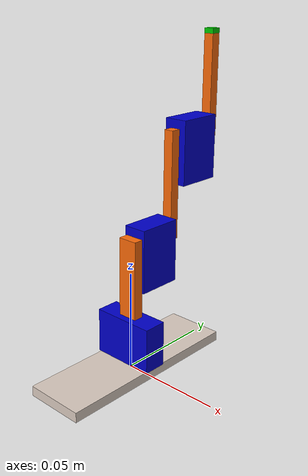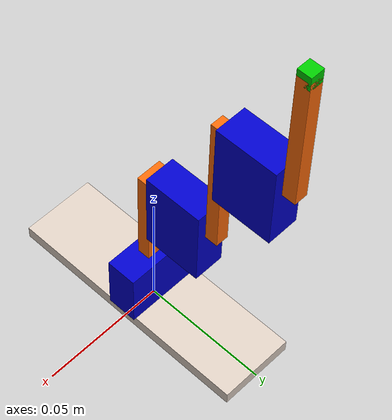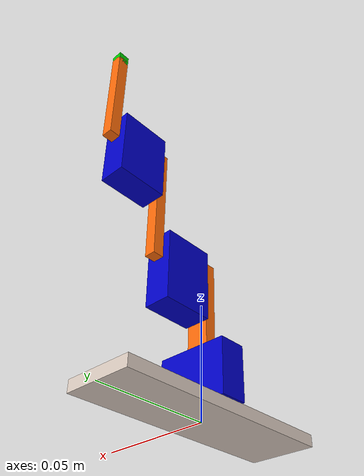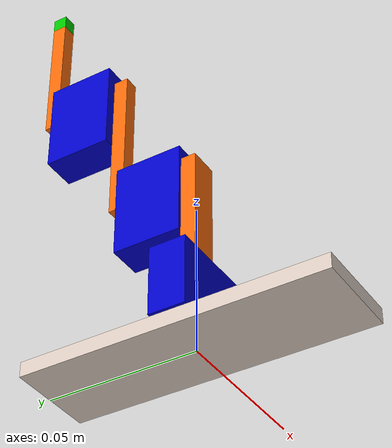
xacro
<?xml version="1.0" encoding="UTF-8"?>
<robot xmlns:xacro="http://www.ros.org/wiki/xacro" name="arduarm">

    <!-- Includes -->
    <xacro:include filename='$(find arduarm_description)/urdf/macros.xacro' />
    <xacro:include filename="$(find arduarm_description)/urdf/arduarm_properties.xacro" />
    <xacro:include filename="$(find arduarm_description)/urdf/materials.xacro" />
    <xacro:include filename="$(find arduarm_description)/urdf/gazebo_properties.xacro" />
    <xacro:include filename="$(find arduarm_description)/urdf/gazebo_plugins.xacro" />

    <link name='world' />
    <joint name="fixed" type="fixed">
        <parent link="world" />
        <child link="base_link" />
    </joint>

    <!-- Base Link -->
    <link name="base_link">
        <collision>
            <origin xyz="0 0 ${base_height/2}" rpy="0 0 0" />
            <geometry>
                <box size="${base_length} ${base_width} ${base_height}" />
            </geometry>
        </collision>

        <visual>
            <origin xyz="0 0 ${base_height/2}" rpy="0 0 0" />
            <geometry>
                <box size="${base_length} ${base_width} ${base_height}" />
            </geometry>
            <material name="brown" />
        </visual>

        <inertial>
            <origin xyz="0 0 ${base_height/2}" rpy="0 0 0" />
            <mass value="${mass}" />
            <xacro:box_inertia mass="${mass}" width="${base_width}" height="${height1}" />
        </inertial>
    </link>

    <!-- base_servo1_joint -->
    <joint name="base_servo1_joint" type="fixed">
        <origin xyz="0 0 ${base_height}" rpy="0 0 0" />
        <parent link="base_link" />
        <child link="servo1" />
        <axis xyz="0 0 1" />
    </joint>

    <!-- servo1 -->
    <link name="servo1">
        <collision>
            <origin xyz="0 0 ${servo_height/2}" rpy="0 0 0" />
            <geometry>
                <box size="${servo_length} ${servo_width} ${servo_height}" />
            </geometry>
        </collision>

        <visual>
            <origin xyz="0 0 ${servo_height/2}" rpy="0 0 0" />
            <geometry>
                <box size="${servo_length} ${servo_width} ${servo_height}" />
            </geometry>
            <material name="blue" />
        </visual>

        <inertial>
            <origin xyz="0 0 ${servo_height/2}" rpy="0 0 0" />
            <mass value="${mass}" />
            <xacro:box_inertia mass="${mass}" width="${servo_width}" height="${height1}" />
        </inertial>

    </link>

    <!-- servo1_link1_joint -->
    <joint name="servo1_link1_joint" type="revolute">
        <origin xyz="0 0 ${servo_height}" rpy="0 0 0" />
        <parent link="servo1" />
        <child link="link1" />
        <axis xyz="0 0 1" />

        <limit effort="1000" velocity="0.5" lower="-${PI/2}" upper="${PI/2}" />
    </joint>

    <!-- Link 1 -->
    <link name="link1">
        <collision>
            <origin xyz="0 0 ${height1/2}" rpy="0 0 0" />
            <geometry>
                <box size="${length1} ${width1} ${height1}" />
            </geometry>
        </collision>

        <visual>
            <origin xyz="0 0 ${height1/2}" rpy="0 0 0" />
            <geometry>
                <box size="${length1} ${width1} ${height1}" />
            </geometry>
            <material name="orange" />
        </visual>

        <inertial>
            <origin xyz="0 0 ${height1/2}" rpy="0 0 0" />
            <mass value="${mass}" />
            <xacro:box_inertia mass="${mass}" width="${width1}" height="${height1}" />
        </inertial>

    </link>

    <!-- link1_servo2_joint -->
    <joint name="link1_servo2_joint" type="fixed">
        <origin xyz="0 ${width1/2} ${height1 - servo_height/2}" rpy="0 ${PI/2} ${PI/2}" />
        <parent link="link1" />
        <child link="servo2" />
        <axis xyz="1 0 0" />
    </joint>

    <!-- servo2 -->
    <link name="servo2">
        <collision>
            <origin xyz="0 0 ${servo_height/2}" rpy="0 0 0" />
            <geometry>
                <box size="${servo_length} ${servo_width} ${servo_height}" />
            </geometry>
        </collision>

        <visual>
            <origin xyz="0 0 ${servo_height/2}" rpy="0 0 0" />
            <geometry>
                <box size="${servo_length} ${servo_width} ${servo_height}" />
            </geometry>
            <material name="blue" />
        </visual>

        <inertial>
            <origin xyz="0 0 ${servo_height/2}" rpy="0 0 0" />
            <mass value="${mass}" />
            <xacro:box_inertia mass="${mass}" width="${servo_width}" height="${height1}" />
        </inertial>

    </link>

    <!-- servo2_link2_joint -->
    <joint name="servo2_link2_joint" type="revolute">
        <origin xyz="${servo_width/2-axel_offset} 0 ${servo_height+length2/2}" rpy="${PI/2} 0 -${PI/2}" />
        <parent link="servo2" />
        <child link="link2" />
        <axis xyz="0 1 0" />
        <limit effort="1000" velocity="0.5" lower="-${PI/2}" upper="${PI/2}" />
    </joint>

    <!-- Link 2 -->
    <link name="link2">
        <collision>
            <origin xyz="0 0 ${height2/2}" rpy="0 0 0" />
            <geometry>
                <box size="${length2} ${width2} ${height2}" />
            </geometry>
        </collision>

        <visual>
            <origin xyz="0 0 ${height2/2}" rpy="0 0 0" />
            <geometry>
                <box size="${length2} ${width2} ${height2}" />
            </geometry>
            <material name="orange" />
        </visual>

        <inertial>
            <origin xyz="0 0 ${height2/2}" rpy="0 0 0" />
            <mass value="${mass}" />
            <xacro:box_inertia mass="${mass}" width="${width2}" height="${height2}" />
        </inertial>
    </link>

    <!-- link2_servo3_joint -->
    <joint name="link2_servo3_joint" type="fixed">
        <origin xyz="0 ${width2/2} ${height2 - servo_height/2}" rpy="0 ${PI/2} ${PI/2}" />
        <parent link="link2" />
        <child link="servo3" />
        <axis xyz="1 0 0" />
    </joint>

    <!-- servo3 -->
    <link name="servo3">
        <collision>
            <origin xyz="0 0 ${servo_height/2}" rpy="0 0 0" />
            <geometry>
                <box size="${servo_length} ${servo_width} ${servo_height}" />
            </geometry>
        </collision>

        <visual>
            <origin xyz="0 0 ${servo_height/2}" rpy="0 0 0" />
            <geometry>
                <box size="${servo_length} ${servo_width} ${servo_height}" />
            </geometry>
            <material name="blue" />
        </visual>

        <inertial>
            <origin xyz="0 0 ${servo_height/2}" rpy="0 0 0" />
            <mass value="${mass}" />
            <xacro:box_inertia mass="${mass}" width="${servo_width}" height="${height1}" />
        </inertial>

    </link>

    <!-- servo3_link3_joint -->
    <joint name="servo3_link3_joint" type="revolute">
        <origin xyz="${servo_width/2 - axel_offset} 0 ${servo_height + length2/2}" rpy="${PI/2} 0 -${PI/2}" />
        <parent link="servo3" />
        <child link="link3" />
        <axis xyz="0 1 0" />

        <limit effort="1000" velocity="0.5" lower="-${PI/2}" upper="${PI/2}" />
    </joint>

    <!-- Link 3 -->
    <link name="link3">
        <collision>
            <origin xyz="0 0 ${height3/2}" rpy="0 0 0" />
            <geometry>
                <box size="${length3} ${width3} ${height3}" />
            </geometry>
        </collision>

        <visual>
            <origin xyz="0 0 ${height3/2}" rpy="0 0 0" />
            <geometry>
                <box size="${length3} ${width3} ${height3}" />
            </geometry>
            <material name="orange" />
        </visual>

        <inertial>
            <origin xyz="0 0 ${height3/2}" rpy="0 0 0" />
            <mass value="${mass}" />
            <xacro:box_inertia mass="${mass}" width="${width3}" height="${height3}" />
        </inertial>
    </link>

    <!-- link3_end_effector_joint -->
    <joint name="link3_end_effector_joint" type="fixed">
        <origin xyz="0 0 ${height3}" rpy="0 0 0" />
        <parent link="link3" />
        <child link="end_effector" />
        <axis xyz="0 1 0" />
    </joint>

    <!-- Link 3 -->
    <link name="end_effector">
        <collision>
            <origin xyz="0 0 0" rpy="0 0 0" />
            <geometry>
                <box size="${width1} ${width1} ${width1}" />
            </geometry>
        </collision>

        <visual>
            <origin xyz="0 0 0" rpy="0 0 0" />
            <geometry>
                <box size="${width1} ${width1} ${width1}" />
            </geometry>
            <material name="green" />
        </visual>

        <inertial>
            <origin xyz="0 0 ${height3/2}" rpy="0 0 0" />
            <mass value="${mass}" />
            <xacro:box_inertia mass="${mass}" width="${width3}" height="${height3}" />
        </inertial>
    </link>

</robot>

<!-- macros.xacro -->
<robot xmlns:xacro="http://www.ros.org/wiki/xacro" name="arduarm">

<!-- Macros -->
    <xacro:macro name="box_inertia" params="mass width height">
        <inertia
        ixx="${mass / 12.0 * (width*width + height*height)}"
        ixy="0.0"
        ixz="0.0"
        iyy="${mass / 12.0 * (height*height + width*width)}"
        iyz="0.0"
        izz="${mass / 12.0 * (width*width + width*width)}" />
    </xacro:macro>

</robot>

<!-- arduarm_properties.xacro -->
<robot xmlns:xacro="http://www.ros.org/wiki/xacro" name="arduarm">

    <!-- Constants for robot dimensions -->
    <xacro:property name="PI" value="3.1415926535897931" />
    <xacro:property name="mass" value="0.2" /> <!-- arbitrary value for mass -->
    <!-- Base Link -->
    <xacro:property name="base_height" value="0.005" />
    <xacro:property name="base_length" value="0.03" />
    <xacro:property name="base_width" value="0.1" />
    <!-- Link 1 -->
    <xacro:property name="height1" value="0.04" />
    <xacro:property name="length1" value="0.01"/>
    <xacro:property name="width1" value="0.005"/>
    <!-- Link 2 -->
    <xacro:property name="height2" value="0.055" />
    <xacro:property name="length2" value="0.005"/>
    <xacro:property name="width2" value="0.005"/>
    <!-- Link 3 -->
    <xacro:property name="height3" value="0.05" />
    <xacro:property name="length3" value="0.005"/>
    <xacro:property name="width3" value="0.005"/>

    <xacro:property name="camera_link" value="0.05" /> <!-- Size of square 'camera' box -->
    <xacro:property name="axel_offset" value="0.01" /> <!-- Space btw top of beam and the each joint -->

    <!-- Servo dimensions -->
    <xacro:property name="servo_length" value="0.032"/>
    <xacro:property name="servo_height" value="0.023"/>
    <xacro:property name="servo_width" value="0.012"/>

</robot>

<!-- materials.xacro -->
<robot xmlns:xacro="http://www.ros.org/wiki/xacro" name="arduarm">

    <material name="black">
        <color rgba="0.0 0.0 0.0 1.0" />
    </material>

    <material name="blue">
        <color rgba="0.0 0.0 0.8 1.0" />
    </material>

    <material name="green">
        <color rgba="0.0 0.8 0.0 1.0" />
    </material>

    <material name="grey">
        <color rgba="0.2 0.2 0.2 1.0" />
    </material>

    <material name="orange">
        <color rgba="${255/255} ${108/255} ${10/255} 1.0" />
    </material>

    <material name="brown">
        <color rgba="${222/255} ${207/255} ${195/255} 1.0" />
    </material>

    <material name="red">
        <color rgba="0.8 0.0 0.0 1.0" />
    </material>

    <material name="white">
        <color rgba="1.0 1.0 1.0 1.0" />
    </material>

</robot>
